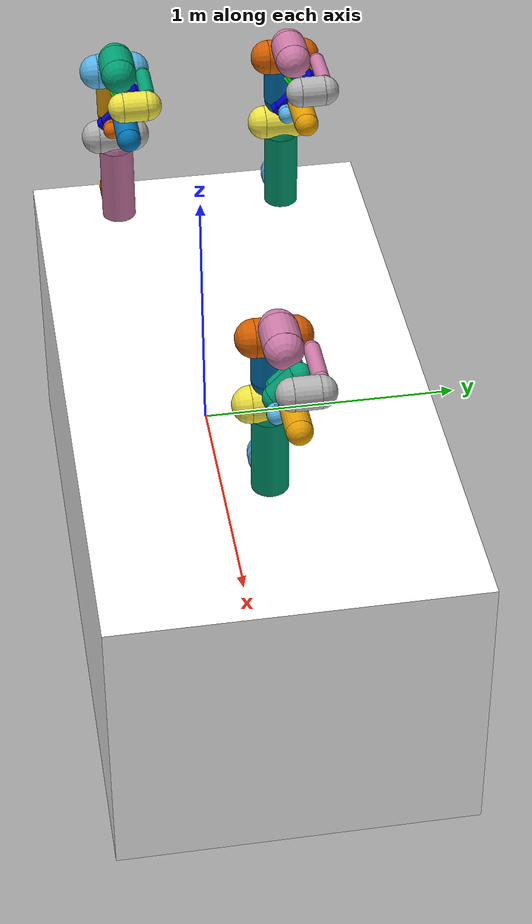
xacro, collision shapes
<?xml version="1.0" encoding="utf-8"?>
<robot xmlns:xacro="http://www.ros.org/wiki/xacro" name="panda">
  <xacro:include filename="$(find franka_description)/robots/panda_arm.xacro"/>
  <xacro:include filename="$(find franka_description)/robots/hand.xacro"/>
  <xacro:include filename="dyros_assembly_gripper.xacro"/>

  <!-- box shaped table as base for the 3 Pandas -->
  <link name="base">
    <visual>
      <origin xyz="1.0 0 0.5" rpy="0 0 0"/>
      <geometry>
        <box size="2.4 1.2 1" />
      </geometry>
      <material name="White">
        <color rgba="1.0 1.0 1.0 1.0"/>
      </material>
    </visual>
    <collision>
      <origin xyz="1.0 0 0.5" rpy="0 0 0  "/>
      <geometry>
        <box size="2.4 1.2 1" />
      </geometry>
    </collision>
  </link>

  <!-- left arm with gripper -->
  <xacro:panda_arm arm_id="panda_left" connected_to="base"  xyz="0 0.3 1" />
  <xacro:dyros_assembly_gripper ns="panda_left" rpy="0 0 ${-pi/4}" connected_to="panda_left_link8" />
  <!-- right arm with gripper -->
  <xacro:panda_arm arm_id="panda_right" connected_to="base"  xyz="0 -0.3 1" />
  <xacro:dyros_assembly_gripper ns="panda_right" rpy="0 0 ${-pi/4}" connected_to="panda_right_link8" />

   <!-- top arm with gripper -->
  <xacro:panda_arm arm_id="panda_top" connected_to="base"  xyz="1.6 0 1" />
  <xacro:hand ns="panda_top" rpy="0 0 ${-pi/4}" connected_to="panda_top_link8" />

</robot>

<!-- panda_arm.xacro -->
<robot xmlns:xacro="http://www.ros.org/wiki/xacro" name="panda">
  <!-- safety_distance: Minimum safety distance in [m] by which the collision volumes are expanded and which is enforced during robot motions -->
  <!-- arm_id: Namespace of the panda arm. Serves to differentiate between arms in case of multiple instances. -->
  <xacro:macro name="panda_arm" params="arm_id:='panda' description_pkg:='franka_description' connected_to:='' xyz:='0 0 0' rpy:='0 0 0' safety_distance:=0">
    <xacro:unless value="${not connected_to}">
      <joint name="${arm_id}_joint_${connected_to}" type="fixed">
        <parent link="${connected_to}"/>
        <child link="${arm_id}_link0"/>
        <origin rpy="${rpy}" xyz="${xyz}"/>
      </joint>
    </xacro:unless>
    <link name="${arm_id}_link0">
      <visual>
        <geometry>
          <mesh filename="package://${description_pkg}/meshes/visual/link0.dae"/>
        </geometry>
      </visual>
      <collision>
        <origin xyz="-0.075 0 0.06" rpy="0 ${pi/2} 0"/>
        <geometry>
          <cylinder radius="${0.06+safety_distance}" length="0.03" />
        </geometry>
      </collision>
      <collision>
        <origin xyz="-0.06 0 0.06" rpy="0 0 0"/>
        <geometry>
          <sphere radius="${0.06+safety_distance}" />
        </geometry>
      </collision>
      <collision>
        <origin xyz="-0.09 0 0.06" rpy="0 0 0"/>
        <geometry>
          <sphere radius="${0.06+safety_distance}" />
        </geometry>
      </collision>
    </link>
    <link name="${arm_id}_link1">
      <visual>
        <geometry>
          <mesh filename="package://${description_pkg}/meshes/visual/link1.dae"/>
        </geometry>
      </visual>
      <collision>
        <origin xyz="0 0 -0.1915" rpy="0 0 0"/>
        <geometry>
          <cylinder radius="${0.06+safety_distance}" length="0.2830" />
        </geometry>
      </collision>
      <collision>
        <origin xyz="0 0 -0.333" rpy="0 0 0"/>
        <geometry>
          <sphere radius="${0.06+safety_distance}" />
        </geometry>
      </collision>
      <collision>
        <origin xyz="0 0 -0.05" rpy="0 0 0"/>
        <geometry>
          <sphere radius="${0.06+safety_distance}" />
        </geometry>
      </collision>
    </link>
    <joint name="${arm_id}_joint1" type="revolute">
      <safety_controller k_position="100.0" k_velocity="40.0" soft_lower_limit="-2.8973" soft_upper_limit="2.8973"/>
      <origin rpy="0 0 0" xyz="0 0 0.333"/>
      <parent link="${arm_id}_link0"/>
      <child link="${arm_id}_link1"/>
      <axis xyz="0 0 1"/>
      <limit effort="87" lower="-2.8973" upper="2.8973" velocity="2.1750"/>
    </joint>
    <link name="${arm_id}_link2">
      <visual>
        <geometry>
          <mesh filename="package://${description_pkg}/meshes/visual/link2.dae"/>
        </geometry>
      </visual>
      <collision>
        <origin xyz="0 0 0" rpy="0 0 0"/>
        <geometry>
          <cylinder radius="${0.06+safety_distance}" length="0.12" />
        </geometry>
      </collision>
      <collision>
        <origin xyz="0 0 -0.06" rpy="0 0 0"/>
        <geometry>
          <sphere radius="${0.06+safety_distance}" />
        </geometry>
      </collision>
      <collision>
        <origin xyz="0 0 0.06" rpy="0 0 0"/>
        <geometry>
          <sphere radius="${0.06+safety_distance}" />
        </geometry>
      </collision>
    </link>
    <joint name="${arm_id}_joint2" type="revolute">
      <safety_controller k_position="100.0" k_velocity="40.0" soft_lower_limit="-1.7628" soft_upper_limit="1.7628"/>
      <origin rpy="${-pi/2} 0 0" xyz="0 0 0"/>
      <parent link="${arm_id}_link1"/>
      <child link="${arm_id}_link2"/>
      <axis xyz="0 0 1"/>
      <limit effort="87" lower="-1.7628" upper="1.7628" velocity="2.1750"/>
    </joint>
    <link name="${arm_id}_link3">
      <visual>
        <geometry>
          <mesh filename="package://${description_pkg}/meshes/visual/link3.dae"/>
        </geometry>
      </visual>
      <collision>
        <origin xyz="0 0 -0.145" rpy="0 0 0"/>
        <geometry>
          <cylinder radius="${0.06+safety_distance}" length="0.15" />
        </geometry>
      </collision>
      <collision>
        <origin xyz="0 0 -0.22" rpy="0 0 0"/>
        <geometry>
          <sphere radius="${0.06+safety_distance}" />
        </geometry>
      </collision>
      <collision>
        <origin xyz="0 0 -0.07" rpy="0 0 0"/>
        <geometry>
          <sphere radius="${0.06+safety_distance}" />
        </geometry>
      </collision>
    </link>
    <joint name="${arm_id}_joint3" type="revolute">
      <safety_controller k_position="100.0" k_velocity="40.0" soft_lower_limit="-2.8973" soft_upper_limit="2.8973"/>
      <origin rpy="${pi/2} 0 0" xyz="0 -0.316 0"/>
      <parent link="${arm_id}_link2"/>
      <child link="${arm_id}_link3"/>
      <axis xyz="0 0 1"/>
      <limit effort="87" lower="-2.8973" upper="2.8973" velocity="2.1750"/>
    </joint>
    <link name="${arm_id}_link4">
      <visual>
        <geometry>
          <mesh filename="package://${description_pkg}/meshes/visual/link4.dae"/>
        </geometry>
      </visual>
      <collision>
        <origin xyz="0 0 0" rpy="0 0 0"/>
        <geometry>
          <cylinder radius="${0.06+safety_distance}" length="0.12" />
        </geometry>
      </collision>
      <collision>
        <origin xyz="0 0 0.06" rpy="0 0 0"/>
        <geometry>
          <sphere radius="${0.06+safety_distance}" />
        </geometry>
      </collision>
      <collision>
        <origin xyz="0 0 -0.06" rpy="0 0 0"/>
        <geometry>
          <sphere radius="${0.06+safety_distance}" />
        </geometry>
      </collision>
    </link>
    <joint name="${arm_id}_joint4" type="revolute">
      <safety_controller k_position="100.0" k_velocity="40.0" soft_lower_limit="-3.0718" soft_upper_limit="-0.0698"/>
      <origin rpy="${pi/2} 0 0" xyz="0.0825 0 0"/>
      <parent link="${arm_id}_link3"/>
      <child link="${arm_id}_link4"/>
      <axis xyz="0 0 1"/>
      <limit effort="87" lower="-3.0718" upper="-0.0698" velocity="2.1750"/>
    </joint>
    <link name="${arm_id}_link5">
      <visual>
        <geometry>
          <mesh filename="package://${description_pkg}/meshes/visual/link5.dae"/>
        </geometry>
      </visual>
      <collision>
        <origin xyz="0 0 -0.26" rpy="0 0 0"/>
        <geometry>
          <cylinder radius="${0.06+safety_distance}" length="0.1" />
        </geometry>
      </collision>
      <collision>
        <origin xyz="0 0 -0.31" rpy="0 0 0"/>
        <geometry>
          <sphere radius="${0.06+safety_distance}" />
        </geometry>
      </collision>
      <collision>
        <origin xyz="0 0 -0.21" rpy="0 0 0"/>
        <geometry>
          <sphere radius="${0.06+safety_distance}" />
        </geometry>
      </collision>
      <collision>
        <origin xyz="0 0.08 -0.13" rpy="0 0 0"/>
        <geometry>
          <cylinder radius="${0.025+safety_distance}" length="0.14" />
        </geometry>
      </collision>
      <collision>
        <origin xyz="0 0.08 -0.06" rpy="0 0 0"/>
        <geometry>
          <sphere radius="${0.025+safety_distance}" />
        </geometry>
      </collision>
      <collision>
        <origin xyz="0 0.08 -0.20" rpy="0 0 0"/>
        <geometry>
          <sphere radius="${0.025+safety_distance}" />
        </geometry>
      </collision>

    </link>
    <joint name="${arm_id}_joint5" type="revolute">
      <safety_controller k_position="100.0" k_velocity="40.0" soft_lower_limit="-2.8973" soft_upper_limit="2.8973"/>
      <origin rpy="${-pi/2} 0 0" xyz="-0.0825 0.384 0"/>
      <parent link="${arm_id}_link4"/>
      <child link="${arm_id}_link5"/>
      <axis xyz="0 0 1"/>
      <limit effort="12" lower="-2.8973" upper="2.8973" velocity="2.6100"/>
    </joint>
    <link name="${arm_id}_link6">
      <visual>
        <geometry>
          <mesh filename="package://${description_pkg}/meshes/visual/link6.dae"/>
        </geometry>
      </visual>
      <collision>
        <origin xyz="0 0 -0.03" rpy="0 0 0"/>
        <geometry>
          <cylinder radius="${0.05+safety_distance}" length="0.08" />
        </geometry>
      </collision>
      <collision>
        <origin xyz="0 0 0.01" rpy="0 0 0"/>
        <geometry>
          <sphere radius="${0.05+safety_distance}" />
        </geometry>
      </collision>
      <collision>
        <origin xyz="0 0 -0.07" rpy="0 0 0"/>
        <geometry>
          <sphere radius="${0.05+safety_distance}" />
        </geometry>
      </collision>
    </link>
    <joint name="${arm_id}_joint6" type="revolute">
      <safety_controller k_position="100.0" k_velocity="40.0" soft_lower_limit="-0.0175" soft_upper_limit="3.7525"/>
      <origin rpy="${pi/2} 0 0" xyz="0 0 0"/>
      <parent link="${arm_id}_link5"/>
      <child link="${arm_id}_link6"/>
      <axis xyz="0 0 1"/>
      <limit effort="12" lower="-0.0175" upper="3.7525" velocity="2.6100"/>
    </joint>
    <link name="${arm_id}_link7">
      <visual>
        <geometry>
          <mesh filename="package://${description_pkg}/meshes/visual/link7.dae"/>
        </geometry>
      </visual>
      <collision>
        <origin xyz="0 0 0.01" rpy="0 0 0"/>
        <geometry>
          <cylinder radius="${0.04+safety_distance}" length="0.14" />
        </geometry>
      </collision>
      <collision>
        <origin xyz="0 0 0.08" rpy="0 0 0"/>
        <geometry>
          <sphere radius="${0.04+safety_distance}"  />
        </geometry>
      </collision>
      <collision>
        <origin xyz="0 0 -0.06" rpy="0 0 0"/>
        <geometry>
          <sphere radius="${0.04+safety_distance}"  />
        </geometry>
      </collision>
    </link>
    <joint name="${arm_id}_joint7" type="revolute">
      <safety_controller k_position="100.0" k_velocity="40.0" soft_lower_limit="-2.8973" soft_upper_limit="2.8973"/>
      <origin rpy="${pi/2} 0 0" xyz="0.088 0 0"/>
      <parent link="${arm_id}_link6"/>
      <child link="${arm_id}_link7"/>
      <axis xyz="0 0 1"/>
      <limit effort="12" lower="-2.8973" upper="2.8973" velocity="2.6100"/>
    </joint>
    <link name="${arm_id}_link8">
      <collision>
        <origin xyz="0.0424 0.0424 -0.0250" rpy="${pi} ${pi/2} ${pi/2}"/>
        <geometry>
          <cylinder radius="${0.03+safety_distance}"  length="0.01" />
        </geometry>
      </collision>
      <collision>
        <origin xyz="0.0424 0.0424 -0.02" rpy="0 0 0"/>
        <geometry>
          <sphere radius="${0.03+safety_distance}"  />
        </geometry>
      </collision>
      <collision>
        <origin xyz="0.0424 0.0424 -0.03" rpy="0 0 0"/>
        <geometry>
          <sphere radius="${0.03+safety_distance}"  />
        </geometry>
      </collision>
    </link>
    <joint name="${arm_id}_joint8" type="fixed">
      <origin rpy="0 0 0" xyz="0 0 0.107"/>
      <parent link="${arm_id}_link7"/>
      <child link="${arm_id}_link8"/>
    </joint>
  </xacro:macro>
</robot>

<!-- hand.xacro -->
<robot xmlns:xacro="http://www.ros.org/wiki/xacro" name="hand">
  <!-- safety_distance: Minimum safety distance in [m] by which the collision volumes are expanded and which is enforced during robot motions -->
  <xacro:macro name="hand" params="connected_to:='' ns:='' rpy:='0 0 0' xyz:='0 0 0' safety_distance:=0">
    <xacro:unless value="${connected_to == ''}">
      <joint name="${ns}_hand_joint" type="fixed">
        <parent link="${connected_to}"/>
        <child link="${ns}_hand"/>
        <origin xyz="${xyz}" rpy="${rpy}"/>
      </joint>
    </xacro:unless>
    <link name="${ns}_hand">
      <visual>
        <geometry>
          <mesh filename="package://franka_description/meshes/visual/hand.dae"/>
        </geometry>
      </visual>
      <collision>
        <origin xyz="0 0 0.04" rpy="0 ${pi/2} ${pi/2}"/>
        <geometry>
          <cylinder radius="${0.04+safety_distance}" length="0.1" />
        </geometry>
      </collision>
      <collision>
        <origin xyz="0 -0.05 0.04" rpy="0 0 0"/>
        <geometry>
          <sphere radius="${0.04+safety_distance}"  />
        </geometry>
      </collision>
      <collision>
        <origin xyz="0 0.05 0.04" rpy="0 0 0"/>
        <geometry>
          <sphere radius="${0.04+safety_distance}"  />
        </geometry>
      </collision>
      <collision>
        <origin xyz="0 0 0.1" rpy="0 ${pi/2} ${pi/2}"/>
        <geometry>
          <cylinder radius="${0.02+safety_distance}" length="0.1" />
        </geometry>
      </collision>
      <collision>
        <origin xyz="0 -0.05 0.1" rpy="0 0 0"/>
        <geometry>
          <sphere radius="${0.02+safety_distance}"  />
        </geometry>
      </collision>
      <collision>
        <origin xyz="0 0.05 0.1" rpy="0 0 0"/>
        <geometry>
          <sphere radius="${0.02+safety_distance}"  />
        </geometry>
      </collision>
    </link>
    <link name="${ns}_leftfinger">
      <visual>
        <geometry>
          <mesh filename="package://franka_description/meshes/visual/finger.dae"/>
        </geometry>
      </visual>
    </link>
    <link name="${ns}_rightfinger">
      <visual>
        <geometry>
          <mesh filename="package://franka_description/meshes/visual/finger.dae"/>
        </geometry>
      </visual>
   </link>
    <joint name="${ns}_finger_joint1" type="prismatic">
      <parent link="${ns}_hand"/>
      <child link="${ns}_leftfinger"/>
      <origin xyz="0 0 0.0584" rpy="0 0 0"/>
      <axis xyz="0 1 0"/>
      <limit effort="20" lower="0.0" upper="0.04" velocity="0.2"/>
    </joint>
    <joint name="${ns}_finger_joint2" type="prismatic">
      <parent link="${ns}_hand"/>
      <child link="${ns}_rightfinger"/>
      <origin xyz="0 0 0.0584" rpy="0 0 0"/>
      <axis xyz="0 -1 0"/>
      <limit effort="20" lower="0.0" upper="0.04" velocity="0.2"/>
      <mimic joint="${ns}_finger_joint1" />
    </joint>
  </xacro:macro>
</robot>

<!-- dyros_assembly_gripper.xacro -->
<robot xmlns:xacro="http://www.ros.org/wiki/xacro" name="dyros_assembly_gripper">
  <xacro:macro name="dyros_assembly_gripper" params="connected_to:='' ns:='' rpy:='0 0 0' xyz:='0 0 0' ">
    <xacro:unless value="${connected_to == ''}">
      <joint name="${ns}_hand_joint" type="fixed">
        <parent link="${connected_to}"/>
        <child link="${ns}_hand"/>
        <origin xyz="${xyz}" rpy="${rpy}"/>
      </joint>
    </xacro:unless>
    <link name="${ns}_hand">
      <visual>
        <origin xyz="0 0 0" rpy="-1.57 0 -1.57"/>
        <geometry>
          <mesh filename="package://assembly_env_description/meshes/gripper_base.stl" scale="0.001 0.001 0.001"/>
        </geometry>
        <material name="blue">
          <color rgba="0 0 0.8 1"/>
        </material>
      </visual>
      <collision>
        <origin xyz="0 0 0" rpy="-1.57 0 -1.57"/>
        <geometry>
          <mesh filename="package://assembly_env_description/meshes/gripper_base.stl" scale="0.001 0.001 0.001"/>
        </geometry>
      </collision>
      <inertial>
        <mass value="0.55"/>
        <inertia ixx="0.0014362" ixy="0.000013" ixz="-0.0000278" iyy="0.00077" iyz="-0.0000000" izz="0.001039"/>
      </inertial>
    </link>

    <joint name="${ns}_finger_right_joint" type="prismatic">
      <parent link="${ns}_hand"/>
      <child link="${ns}_finger_right_link"/>
      <origin xyz="0 0.000 +0.0745" rpy="0 0 0"/>
      <axis xyz="0 +1 0"/>
      <limit lower="-0.1" upper="0.15" effort="1000000" velocity="1000000"/>
    </joint>
    <link name="${ns}_finger_right_link">
      <visual>
        <origin xyz="0 0 0" rpy="-1.57 0 -1.57"/>
        <geometry>
          <mesh filename="package://assembly_env_description/meshes/gripper_tip_right.stl" scale="0.001 0.001 0.001"/>
        </geometry>
        <material name="green">
          <color rgba="0 0.8 0 1"/>
        </material>
      </visual>
      <collision>
        <origin xyz="0 0 0" rpy="-1.57 0 -1.57"/>
        <geometry>
          <mesh filename="package://assembly_env_description/meshes/gripper_tip_right.stl" scale="0.001 0.001 0.001"/>
        </geometry>
      </collision>
    </link>

    <joint name="${ns}_finger_left_joint" type="prismatic">
      <parent link="${ns}_hand"/>
      <child link="${ns}_finger_left_link"/>
      <origin xyz="0 0.000 +0.0745" rpy="0 0 0"/>
      <axis xyz="0 -1 0"/>
      <limit lower="-0.1" upper="0.15" effort="1000000" velocity="1000000"/>
    </joint>
    <link name="${ns}_finger_left_link">
      <visual>
        <origin xyz="0 0 0" rpy="-1.57 0 -1.57"/>
        <geometry>
          <mesh filename="package://assembly_env_description/meshes/gripper_tip_left.stl" scale="0.001 0.001 0.001"/>
        </geometry>
        <material name="green">
          <color rgba="0 0.8 0 1"/>
        </material>
      </visual>
      <collision>
        <origin xyz="0 0 0" rpy="-1.57 0 -1.57"/>
        <geometry>
          <mesh filename="package://assembly_env_description/meshes/gripper_tip_left.stl" scale="0.001 0.001 0.001"/>
        </geometry>
      </collision>
    </link>

  </xacro:macro>
</robot>
